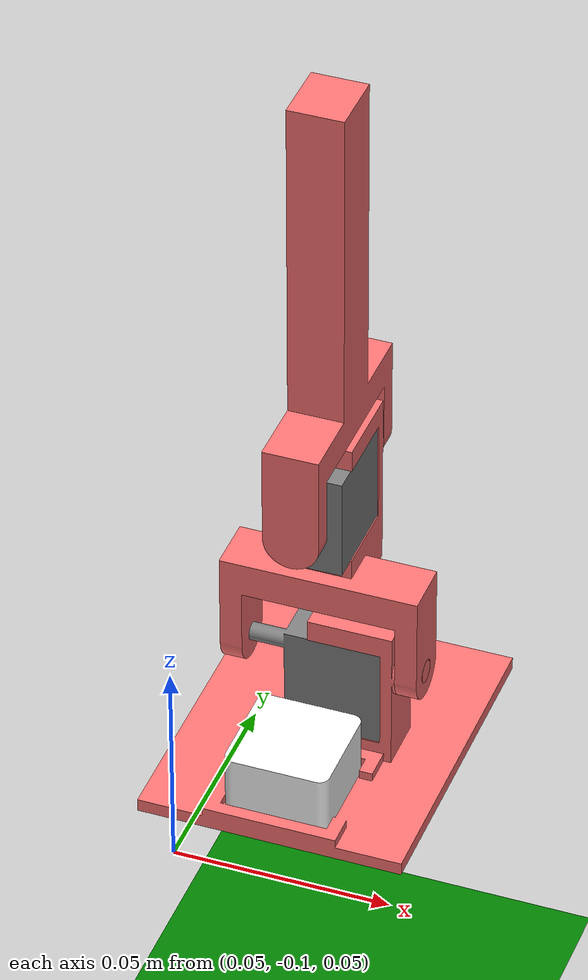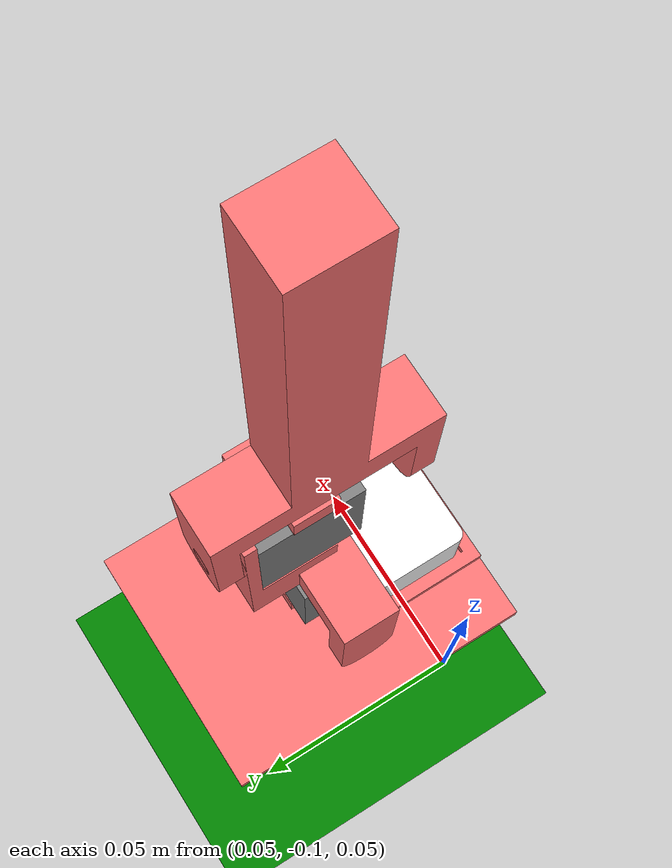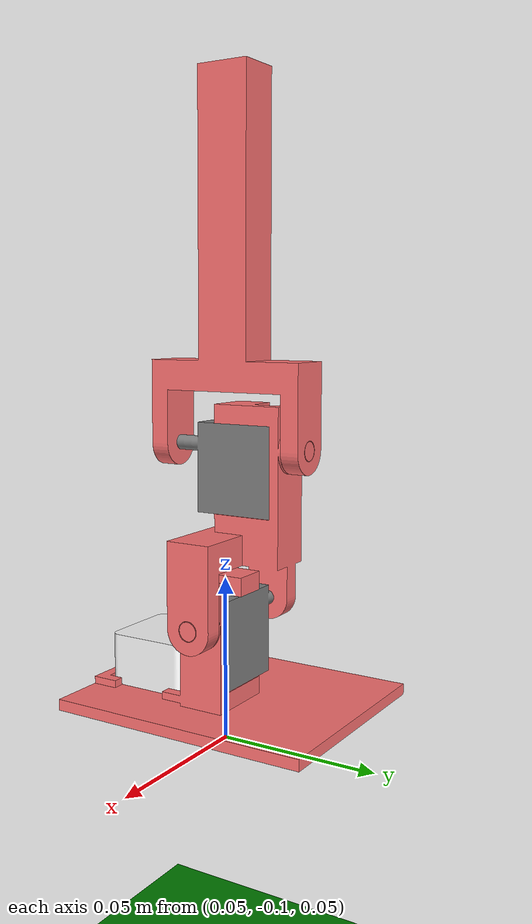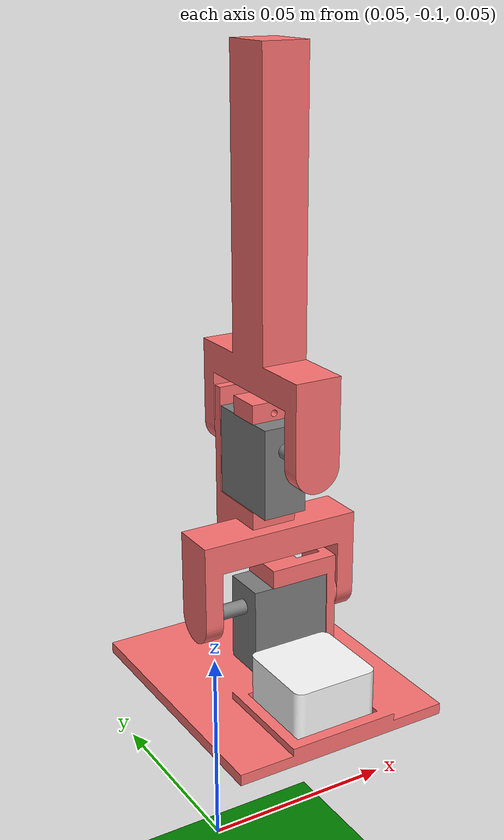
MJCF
<mujoco model="robo1">
  <compiler angle="radian" meshdir="assets" autolimits="true"/>

  <option timestep="0.001" gravity="0 0 -9.81" integrator="implicitfast"/>

  <asset>
    <mesh name="ATOM" file="ATOM.stl"/>
    <mesh name="foot" file="foot.stl"/>
    <mesh name="servo1" file="servo1.stl"/>
    <mesh name="arm1" file="arm1.stl"/>
    <mesh name="servo2" file="servo2.stl"/>
    <mesh name="arm2" file="arm2.stl"/>
  </asset>

  <default>
    <joint type="hinge" limited="true" range="-1.57079632679 1.57079632679"/>
    <position ctrllimited="true" ctrlrange="-1.57079632679 1.57079632679"
              forcelimited="true" forcerange="-1.0 1.0"
              kp="0.5" kv="0.04"/>
  </default>

  <worldbody>
    <light name="light1" pos="1 0 0" dir="0 0 -1" directional="true"/>
    <camera name="front" pos="0.22 -0.45 0.20" xyaxes="1 0 0 0 0.35 1"/>

    <body name="foot" pos="0 0 0.0">
      <joint type="free"/>
      <inertial pos="0.079759 -0.079713 0.078911" mass="0.017628"
                fullinertia="7.818e-6 5.908792e-6 1.1153122e-5 -4.3788e-8 -4.37317e-7 1.1931e-8"/>
      <geom type="mesh" mesh="foot" rgba="1 0.45 0.45 1"/>
      <geom name="foot_collision" type="box" pos="0.00829 0.00365 -0.00155"
            size="0.02131 0.03100 0.03748" contype="0" conaffinity="0" rgba="1 0.45 0.45 0"/>

      <body name="ATOM" pos="0 0 0">
        <inertial pos="0.07810 -0.10035 0.084206" mass="0.007"
                  diaginertia="4.34538e-7 4.34538e-7 6.40468e-7"/>
        <geom type="mesh" mesh="ATOM" rgba="1 1 1 1"/>
        <geom name="atom_collision" type="box" pos="0 0 0"
              size="0.00700 0.01180 0.01180" contype="0" conaffinity="0" rgba="1 1 1 0"/>
      </body>

      <body name="servo1" pos="0 0 0">
        <inertial pos="0.081005 -0.079 0.094111" mass="0.011"
                  fullinertia="6.54478e-7 1.01173e-6 6.17122e-7 -2.36801e-16 1.78456e-8 8.39085e-17"/>
        <geom type="mesh" mesh="servo1" rgba="0.5 0.5 0.5 1"/>
        <geom name="servo1_collision" type="box" pos="0 -0.00028 0.00036"
              size="0.00600 0.01570 0.01670" contype="0" conaffinity="0" rgba="0.5 0.5 0.5 0"/>
      </body>

      <body name="arm1" pos="0 0 0">
        <joint name="servo1_joint" axis="1 0 0" pos="0.06070 -0.079 0.099606"
               damping="0.02" armature="0.0001"/>
        <inertial pos="0.077944 -0.07521 0.12069" mass="0.011444"
                fullinertia="2.729019e-6 4.042083e-6 2.347159e-6 -1.3415e-8 -7.1469e-8 -5.00723e-7"/>
        <geom type="mesh" mesh="arm1" rgba="1 0.45 0.45 1"/>
        <geom name="arm1_collision" type="box" pos="0.00053 0.00003 0.00274"
              size="0.01366 0.02253 0.03257" contype="0" conaffinity="0" rgba="1 0.45 0.45 0"/>

        <body name="servo2" pos="0 0 0">
          <inertial pos="0.07810 -0.076095 0.139111" mass="0.011"
                fullinertia="1.01173e-6 6.54478e-7 6.17122e-7 2.36801e-16 -8.39085e-17 1.78456e-8"/>
          <geom type="mesh" mesh="servo2" rgba="0.5 0.5 0.5 1"/>
          <geom name="servo2_collision" type="box" pos="0 0.00028 0.00036"
                size="0.00600 0.01570 0.01670" contype="0" conaffinity="0" rgba="0.5 0.5 0.5 0"/>

          <body name="arm2" pos="0 0 0">
            <joint name="servo2_joint" axis="0 1 0" pos="0.07810 -0.09640 0.144606"
                   damping="0.02" armature="0.0001"/>
            <inertial pos="0.07810 -0.079112 0.189317" mass="0.021622"
                    fullinertia="1.9417087e-5 1.7670681e-5 2.307976e-6 0 3.2e-11 -1.07968e-7"/>
            <geom type="mesh" mesh="arm2" rgba="1 0.45 0.45 1"/>
            <geom name="arm2_collision" type="box" pos="0 -0.00040 0.00975"
                  size="0.00625 0.02250 0.05202" contype="0" conaffinity="0" rgba="1 0.45 0.45 0"/>
          </body>

        </body>
      </body>

    </body>

    <geom name="ground_collision" type="plane" size="5 5 0.1" pos="0 0 0" rgba="0.0 0.5 0.0 0"/>
    <geom name="ground_visual" type="plane" size="5 5 0.1" pos="0 0 -0.008"
          contype="0" conaffinity="0" rgba="0.0 0.5 0.0 1"/>
  </worldbody>

  <actuator>
    <position name="servo1_pos" joint="servo1_joint"/>
    <position name="servo2_pos" joint="servo2_joint"/>
  </actuator>
</mujoco>
